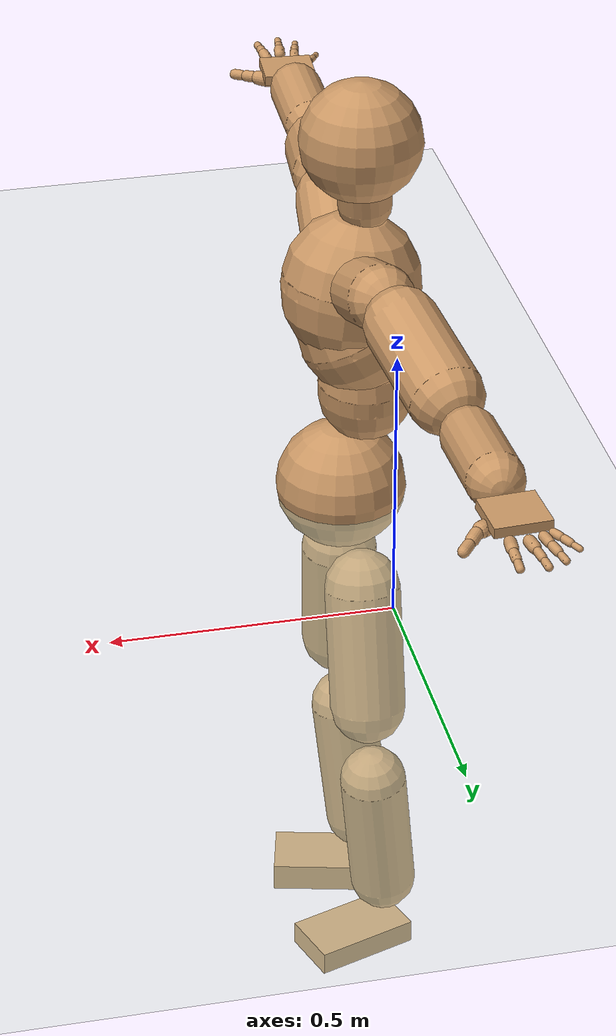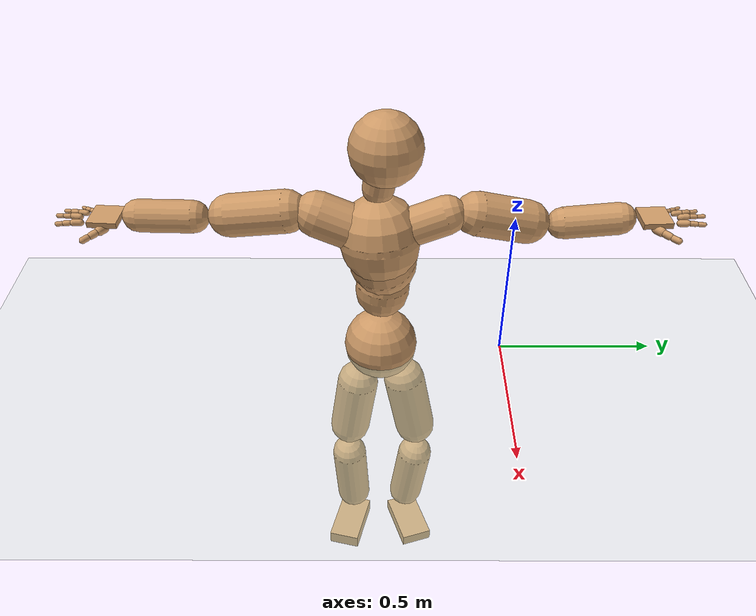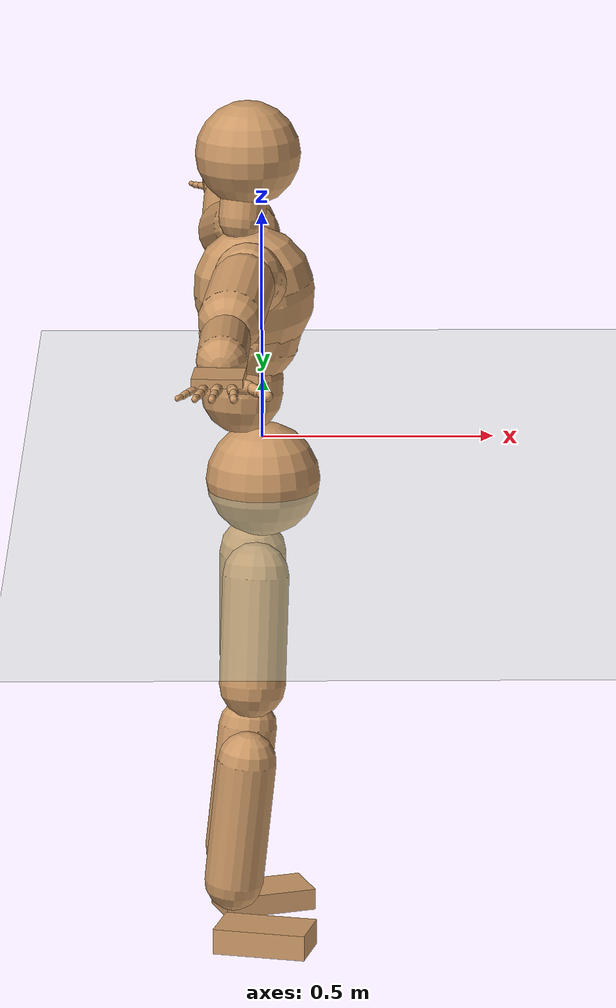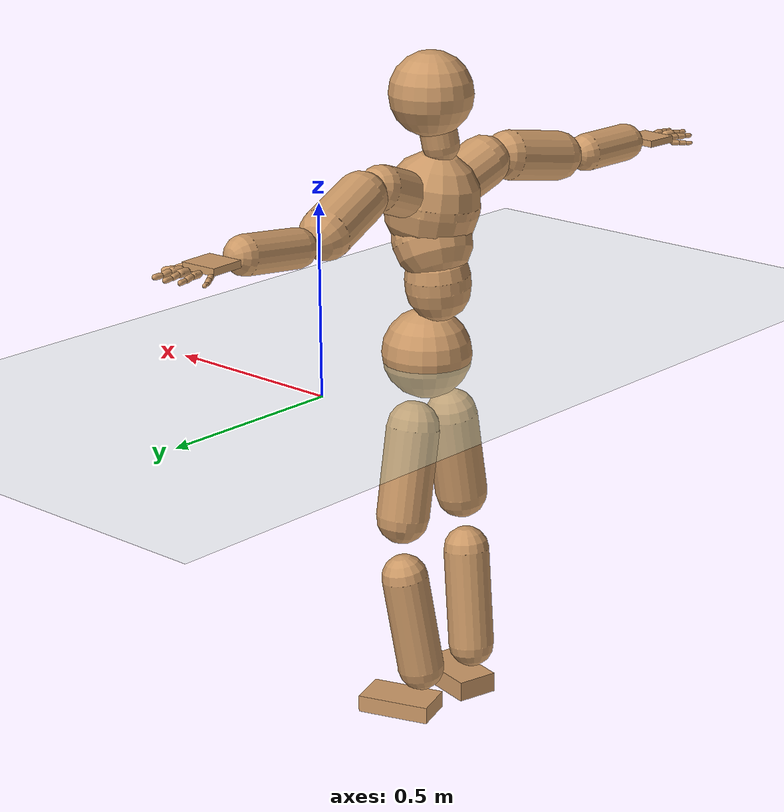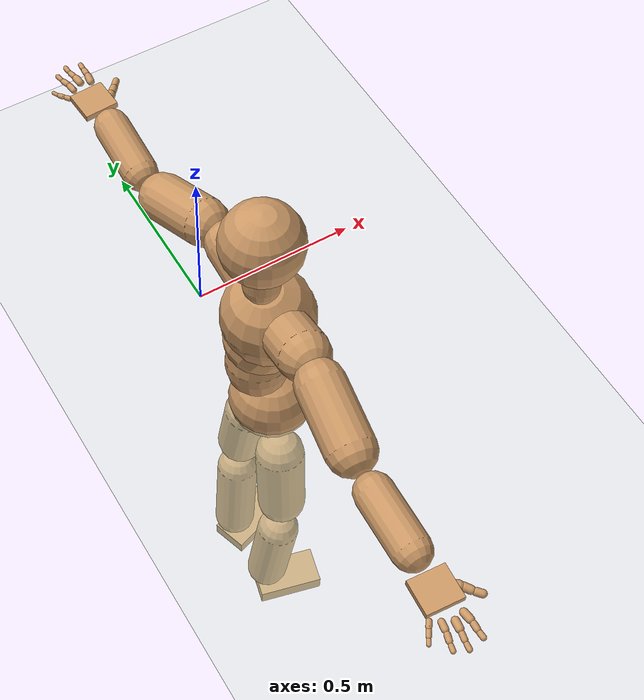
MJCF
<mujoco model="humanoid">
  <compiler coordinate="local" angle="radian"/>
  <default>
    <joint damping="0.0" armature="0.01" stiffness="0.0" limited="true"/>
    <geom conaffinity="1" condim="3" contype="7" margin="0.001" rgba="0.8 0.6 .4 1"/>
  </default>
  <asset>
    <texture type="skybox" builtin="gradient" rgb1=".4 .5 .6" rgb2="0 0 0" width="100" height="100"/>
    <texture builtin="flat" height="1278" mark="cross" markrgb="1 1 1" name="texgeom" random="0.01" rgb1="0.8 0.6 0.4" rgb2="0.8 0.6 0.4" type="cube" width="127"/>
    <texture builtin="checker" height="100" name="texplane" rgb1="0 0 0" rgb2="0.8 0.8 0.8" type="2d" width="100"/>
    <material name="MatPlane" reflectance="0.5" shininess="1" specular="1" texrepeat="60 60" texture="texplane"/>
    <material name="geom" texture="texgeom" texuniform="true"/>
  </asset>
  <worldbody>
    <light cutoff="100" diffuse="1 1 1" dir="-0 0 -1.3" directional="true" exponent="1" pos="0 0 1.3" specular=".1 .1 .1"/>
    <geom conaffinity="1" condim="3" name="floor" pos="0 0 0" rgba="0.8 0.9 0.8 1" size="100 100 .2" type="plane" material="MatPlane"/>
    <body name="Pelvis" pos="0.0018 -0.4015 0.0183">
      <freejoint name="Pelvis"/>
      <geom type="sphere" contype="1" conaffinity="1" density="500" size="0.1206" pos="0.0000 0.0000 0.0000" name="Pelvis"/>
      <body name="L_Hip" pos="-0.0224 0.0668 -0.1016">
        <joint name="L_Hip_x" type="hinge" pos="0 0 0" axis="1 0 0" stiffness="800" damping="80" armature="0.02" range="-180.0000 180.0000"/>
        <joint name="L_Hip_y" type="hinge" pos="0 0 0" axis="0 1 0" stiffness="800" damping="80" armature="0.02" range="-180.0000 180.0000"/>
        <joint name="L_Hip_z" type="hinge" pos="0 0 0" axis="0 0 1" stiffness="800" damping="80" armature="0.02" range="-180.0000 180.0000"/>
        <geom type="capsule" contype="1" conaffinity="1" density="500" fromto="-0.0008 0.0149 -0.0802 -0.0031 0.0597 -0.3207" size="0.0707" name="L_Hip"/>
        <body name="L_Knee" pos="-0.0039 0.0746 -0.4009">
          <joint name="L_Knee_x" type="hinge" pos="0 0 0" axis="1 0 0" stiffness="800" damping="80" armature="0.02" range="-180.0000 180.0000"/>
          <joint name="L_Knee_y" type="hinge" pos="0 0 0" axis="0 1 0" stiffness="800" damping="80" armature="0.02" range="-180.0000 180.0000"/>
          <joint name="L_Knee_z" type="hinge" pos="0 0 0" axis="0 0 1" stiffness="800" damping="80" armature="0.02" range="-180.0000 180.0000"/>
          <geom type="capsule" contype="1" conaffinity="1" density="500" fromto="-0.0099 -0.0102 -0.0878 -0.0395 -0.0408 -0.3514" size="0.0628" name="L_Knee"/>
          <body name="L_Ankle" pos="-0.0494 -0.051 -0.4392">
            <joint name="L_Ankle_x" type="hinge" pos="0 0 0" axis="1 0 0" stiffness="800" damping="80" armature="0.02" range="-180.0000 180.0000"/>
            <joint name="L_Ankle_y" type="hinge" pos="0 0 0" axis="0 1 0" stiffness="800" damping="80" armature="0.02" range="-180.0000 180.0000"/>
            <joint name="L_Ankle_z" type="hinge" pos="0 0 0" axis="0 0 1" stiffness="800" damping="80" armature="0.02" range="-180.0000 180.0000"/>
            <geom type="box" contype="1" conaffinity="1" density="500" pos="0.0717 0.0238 -0.0315" size="0.0998 0.0567 0.023" quat="0.9871 0.0000 0.0000 0.1598" name="L_Ankle"/>
            <body name="L_Toe" pos="0.1434 0.0477 -0.0629">
              <joint name="L_Toe_x" type="hinge" pos="0 0 0" axis="1 0 0" stiffness="500" damping="50" armature="0.02" range="-180.0000 180.0000"/>
              <joint name="L_Toe_y" type="hinge" pos="0 0 0" axis="0 1 0" stiffness="500" damping="50" armature="0.02" range="-180.0000 180.0000"/>
              <joint name="L_Toe_z" type="hinge" pos="0 0 0" axis="0 0 1" stiffness="500" damping="50" armature="0.02" range="-180.0000 180.0000"/>
              <geom type="box" contype="1" conaffinity="1" density="500" pos="0.0000 0.0000 0.0315" size="0.0011 0.0027 0.0012" quat="0.9865 0.0000 0.0000 0.1639" name="L_Toe"/>
            </body>
          </body>
        </body>
      </body>
      <body name="R_Hip" pos="-0.013 -0.0693 -0.1133">
        <joint name="R_Hip_x" type="hinge" pos="0 0 0" axis="1 0 0" stiffness="800" damping="80" armature="0.02" range="-180.0000 180.0000"/>
        <joint name="R_Hip_y" type="hinge" pos="0 0 0" axis="0 1 0" stiffness="800" damping="80" armature="0.02" range="-180.0000 180.0000"/>
        <joint name="R_Hip_z" type="hinge" pos="0 0 0" axis="0 0 1" stiffness="800" damping="80" armature="0.02" range="-180.0000 180.0000"/>
        <geom type="capsule" contype="1" conaffinity="1" density="500" fromto="-0.0028 -0.0111 -0.0767 -0.0112 -0.0444 -0.3066" size="0.0707" name="R_Hip"/>
        <body name="R_Knee" pos="-0.014 -0.0554 -0.3833">
          <joint name="R_Knee_x" type="hinge" pos="0 0 0" axis="1 0 0" stiffness="800" damping="80" armature="0.02" range="-180.0000 180.0000"/>
          <joint name="R_Knee_y" type="hinge" pos="0 0 0" axis="0 1 0" stiffness="800" damping="80" armature="0.02" range="-180.0000 180.0000"/>
          <joint name="R_Knee_z" type="hinge" pos="0 0 0" axis="0 0 1" stiffness="800" damping="80" armature="0.02" range="-180.0000 180.0000"/>
          <geom type="capsule" contype="1" conaffinity="1" density="500" fromto="-0.0096 0.0036 -0.0906 -0.0386 0.0146 -0.3623" size="0.0628" name="R_Knee"/>
          <body name="R_Ankle" pos="-0.0482 0.0182 -0.4529">
            <joint name="R_Ankle_x" type="hinge" pos="0 0 0" axis="1 0 0" stiffness="800" damping="80" armature="0.02" range="-180.0000 180.0000"/>
            <joint name="R_Ankle_y" type="hinge" pos="0 0 0" axis="0 1 0" stiffness="800" damping="80" armature="0.02" range="-180.0000 180.0000"/>
            <joint name="R_Ankle_z" type="hinge" pos="0 0 0" axis="0 0 1" stiffness="800" damping="80" armature="0.02" range="-180.0000 180.0000"/>
            <geom type="box" contype="1" conaffinity="1" density="500" pos="0.0752 -0.0188 -0.0307" size="0.0998 0.0567 0.0276" quat="0.9925 0.0000 0.0000 -0.1219" name="R_Ankle"/>
            <body name="R_Toe" pos="0.1504 -0.0375 -0.0614">
              <joint name="R_Toe_x" type="hinge" pos="0 0 0" axis="1 0 0" stiffness="500" damping="50" armature="0.02" range="-180.0000 180.0000"/>
              <joint name="R_Toe_y" type="hinge" pos="0 0 0" axis="0 1 0" stiffness="500" damping="50" armature="0.02" range="-180.0000 180.0000"/>
              <joint name="R_Toe_z" type="hinge" pos="0 0 0" axis="0 0 1" stiffness="500" damping="50" armature="0.02" range="-180.0000 180.0000"/>
              <geom type="box" contype="1" conaffinity="1" density="500" pos="0.0000 0.0000 0.0261" size="0.0011 0.0027 0.0012" quat="0.9935 0.0000 0.0000 -0.1142" name="R_Toe"/>
            </body>
          </body>
        </body>
      </body>
      <body name="Torso" pos="-0.0462 -0.0017 0.1204">
        <joint name="Torso_x" type="hinge" pos="0 0 0" axis="1 0 0" stiffness="1000" damping="100" armature="0.02" range="-180.0000 180.0000"/>
        <joint name="Torso_y" type="hinge" pos="0 0 0" axis="0 1 0" stiffness="1000" damping="100" armature="0.02" range="-180.0000 180.0000"/>
        <joint name="Torso_z" type="hinge" pos="0 0 0" axis="0 0 1" stiffness="1000" damping="100" armature="0.02" range="-180.0000 180.0000"/>
        <geom type="capsule" contype="1" conaffinity="1" density="500" fromto="0.0036 0.0088 0.0990 0.0024 0.0059 0.0660" size="0.0867" name="Torso"/>
        <body name="Spine" pos="0.0061 0.0147 0.1649">
          <joint name="Spine_x" type="hinge" pos="0 0 0" axis="1 0 0" stiffness="1000" damping="100" armature="0.02" range="-180.0000 180.0000"/>
          <joint name="Spine_y" type="hinge" pos="0 0 0" axis="0 1 0" stiffness="1000" damping="100" armature="0.02" range="-180.0000 180.0000"/>
          <joint name="Spine_z" type="hinge" pos="0 0 0" axis="0 0 1" stiffness="1000" damping="100" armature="0.02" range="-180.0000 180.0000"/>
          <geom type="capsule" contype="1" conaffinity="1" density="500" fromto="0.0188 -0.0068 0.0381 0.0125 -0.0046 0.0254" size="0.1063" name="Spine"/>
          <body name="Chest" pos="0.0313 -0.0114 0.0635">
            <joint name="Chest_x" type="hinge" pos="0 0 0" axis="1 0 0" stiffness="1000" damping="100" armature="0.02" range="-180.0000 180.0000"/>
            <joint name="Chest_y" type="hinge" pos="0 0 0" axis="0 1 0" stiffness="1000" damping="100" armature="0.02" range="-180.0000 180.0000"/>
            <joint name="Chest_z" type="hinge" pos="0 0 0" axis="0 0 1" stiffness="1000" damping="100" armature="0.02" range="-180.0000 180.0000"/>
            <geom type="capsule" contype="1" conaffinity="1" density="500" fromto="-0.0096 -0.0045 0.0697 -0.0064 -0.0030 0.0465" size="0.1262" name="Chest"/>
            <body name="Neck" pos="-0.0361 -0.0142 0.1813">
              <joint name="Neck_x" type="hinge" pos="0 0 0" axis="1 0 0" stiffness="500" damping="50" armature="0.02" range="-180.0000 180.0000"/>
              <joint name="Neck_y" type="hinge" pos="0 0 0" axis="0 1 0" stiffness="500" damping="50" armature="0.02" range="-180.0000 180.0000"/>
              <joint name="Neck_z" type="hinge" pos="0 0 0" axis="0 0 1" stiffness="500" damping="50" armature="0.02" range="-180.0000 180.0000"/>
              <geom type="capsule" contype="1" conaffinity="1" density="500" fromto="0.0033 0.0055 0.0335 0.0132 0.0221 0.1339" size="0.0489" name="Neck"/>
              <body name="Head" pos="0.0164 0.0276 0.1673">
                <joint name="Head_x" type="hinge" pos="0 0 0" axis="1 0 0" stiffness="500" damping="50" armature="0.02" range="-180.0000 180.0000"/>
                <joint name="Head_y" type="hinge" pos="0 0 0" axis="0 1 0" stiffness="500" damping="50" armature="0.02" range="-180.0000 180.0000"/>
                <joint name="Head_z" type="hinge" pos="0 0 0" axis="0 0 1" stiffness="500" damping="50" armature="0.02" range="-180.0000 180.0000"/>
                <geom type="sphere" contype="1" conaffinity="1" density="500" size="0.1102" pos="0.0000 0.0000 0.0000" name="Head"/>
              </body>
            </body>
            <body name="L_Thorax" pos="-0.0047 0.0512 0.0834">
              <joint name="L_Thorax_x" type="hinge" pos="0 0 0" axis="1 0 0" stiffness="500" damping="50" armature="0.02" range="-180.0000 180.0000"/>
              <joint name="L_Thorax_y" type="hinge" pos="0 0 0" axis="0 1 0" stiffness="500" damping="50" armature="0.02" range="-180.0000 180.0000"/>
              <joint name="L_Thorax_z" type="hinge" pos="0 0 0" axis="0 0 1" stiffness="500" damping="50" armature="0.02" range="-180.0000 180.0000"/>
              <geom type="capsule" contype="1" conaffinity="1" density="500" fromto="-0.0024 0.0363 0.0131 -0.0097 0.1450 0.0524" size="0.0605" name="L_Thorax"/>
              <body name="L_Shoulder" pos="-0.0121 0.1813 0.0655">
                <joint name="L_Shoulder_x" type="hinge" pos="0 0 0" axis="1 0 0" stiffness="500" damping="50" armature="0.02" range="-180.0000 180.0000"/>
                <joint name="L_Shoulder_y" type="hinge" pos="0 0 0" axis="0 1 0" stiffness="500" damping="50" armature="0.02" range="-180.0000 180.0000"/>
                <joint name="L_Shoulder_z" type="hinge" pos="0 0 0" axis="0 0 1" stiffness="500" damping="50" armature="0.02" range="-180.0000 180.0000"/>
                <geom type="capsule" contype="1" conaffinity="1" density="500" fromto="-0.0119 0.0546 -0.0172 -0.0476 0.2184 -0.0689" size="0.0675" name="L_Shoulder"/>
                <body name="L_Elbow" pos="-0.0595 0.273 -0.0862">
                  <joint name="L_Elbow_x" type="hinge" pos="0 0 0" axis="1 0 0" stiffness="500" damping="50" armature="0.02" range="-720.0000 720.0000"/>
                  <joint name="L_Elbow_y" type="hinge" pos="0 0 0" axis="0 1 0" stiffness="500" damping="50" armature="0.02" range="-720.0000 720.0000"/>
                  <joint name="L_Elbow_z" type="hinge" pos="0 0 0" axis="0 0 1" stiffness="500" damping="50" armature="0.02" range="-720.0000 720.0000"/>
                  <geom type="capsule" contype="1" conaffinity="1" density="500" fromto="0.0010 0.0574 0.0062 0.0040 0.2297 0.0249" size="0.0499" name="L_Elbow"/>
                  <body name="L_Wrist" pos="0.005 0.2871 0.0311">
                    <joint name="L_Wrist_x" type="hinge" pos="0 0 0" axis="1 0 0" stiffness="300" damping="30" armature="0.02" range="-180.0000 180.0000"/>
                    <joint name="L_Wrist_y" type="hinge" pos="0 0 0" axis="0 1 0" stiffness="300" damping="30" armature="0.02" range="-180.0000 180.0000"/>
                    <joint name="L_Wrist_z" type="hinge" pos="0 0 0" axis="0 0 1" stiffness="300" damping="30" armature="0.02" range="-180.0000 180.0000"/>
                    <geom type="box" contype="1" conaffinity="1" density="500" pos="-0.0030 0.0493 -0.0058" size="0.0462 0.0492 0.0091" quat="0.7280 0.0000 0.0000 -0.6855" name="L_Wrist"/>
                    <body name="L_Index1" pos="0.0234 0.1158 -0.0081">
                      <joint name="L_Index1_x" type="hinge" pos="0 0 0" axis="1 0 0" stiffness="100" damping="10" armature="0.02" range="-180.0000 180.0000"/>
                      <joint name="L_Index1_y" type="hinge" pos="0 0 0" axis="0 1 0" stiffness="100" damping="10" armature="0.02" range="-180.0000 180.0000"/>
                      <joint name="L_Index1_z" type="hinge" pos="0 0 0" axis="0 0 1" stiffness="100" damping="10" armature="0.02" range="-180.0000 180.0000"/>
                      <geom type="capsule" contype="1" conaffinity="1" density="500" fromto="0.0008 0.0070 0.0004 0.0031 0.0279 0.0016" size="0.0105" name="L_Index1"/>
                      <body name="L_Index2" pos="0.0039 0.0348 0.002">
                        <joint name="L_Index2_x" type="hinge" pos="0 0 0" axis="1 0 0" stiffness="100" damping="10" armature="0.02" range="-180.0000 180.0000"/>
                        <joint name="L_Index2_y" type="hinge" pos="0 0 0" axis="0 1 0" stiffness="100" damping="10" armature="0.02" range="-180.0000 180.0000"/>
                        <joint name="L_Index2_z" type="hinge" pos="0 0 0" axis="0 0 1" stiffness="100" damping="10" armature="0.02" range="-180.0000 180.0000"/>
                        <geom type="capsule" contype="1" conaffinity="1" density="500" fromto="-0.0000 0.0049 -0.0006 -0.0002 0.0196 -0.0024" size="0.0085" name="L_Index2"/>
                        <body name="L_Index3" pos="-0.0002 0.0245 -0.003">
                          <joint name="L_Index3_x" type="hinge" pos="0 0 0" axis="1 0 0" stiffness="100" damping="10" armature="0.02" range="-180.0000 180.0000"/>
                          <joint name="L_Index3_y" type="hinge" pos="0 0 0" axis="0 1 0" stiffness="100" damping="10" armature="0.02" range="-180.0000 180.0000"/>
                          <joint name="L_Index3_z" type="hinge" pos="0 0 0" axis="0 0 1" stiffness="100" damping="10" armature="0.02" range="-180.0000 180.0000"/>
                          <geom type="capsule" contype="1" conaffinity="1" density="500" fromto="0.0004 0.0053 -0.0002 0.0014 0.0212 -0.0008" size="0.0072" name="L_Index3"/>
                        </body>
                      </body>
                    </body>
                    <body name="L_Middle1" pos="-0.0035 0.1243 -0.0049">
                      <joint name="L_Middle1_x" type="hinge" pos="0 0 0" axis="1 0 0" stiffness="100" damping="10" armature="0.02" range="-180.0000 180.0000"/>
                      <joint name="L_Middle1_y" type="hinge" pos="0 0 0" axis="0 1 0" stiffness="100" damping="10" armature="0.02" range="-180.0000 180.0000"/>
                      <joint name="L_Middle1_z" type="hinge" pos="0 0 0" axis="0 0 1" stiffness="100" damping="10" armature="0.02" range="-180.0000 180.0000"/>
                      <geom type="capsule" contype="1" conaffinity="1" density="500" fromto="-0.0009 0.0066 0.0001 -0.0037 0.0266 0.0006" size="0.0105" name="L_Middle1"/>
                      <body name="L_Middle2" pos="-0.0046 0.0332 0.0007">
                        <joint name="L_Middle2_x" type="hinge" pos="0 0 0" axis="1 0 0" stiffness="100" damping="10" armature="0.02" range="-180.0000 180.0000"/>
                        <joint name="L_Middle2_y" type="hinge" pos="0 0 0" axis="0 1 0" stiffness="100" damping="10" armature="0.02" range="-180.0000 180.0000"/>
                        <joint name="L_Middle2_z" type="hinge" pos="0 0 0" axis="0 0 1" stiffness="100" damping="10" armature="0.02" range="-180.0000 180.0000"/>
                        <geom type="capsule" contype="1" conaffinity="1" density="500" fromto="-0.0009 0.0051 -0.0005 -0.0036 0.0203 -0.0022" size="0.0077" name="L_Middle2"/>
                        <body name="L_Middle3" pos="-0.0045 0.0253 -0.0027">
                          <joint name="L_Middle3_x" type="hinge" pos="0 0 0" axis="1 0 0" stiffness="100" damping="10" armature="0.02" range="-180.0000 180.0000"/>
                          <joint name="L_Middle3_y" type="hinge" pos="0 0 0" axis="0 1 0" stiffness="100" damping="10" armature="0.02" range="-180.0000 180.0000"/>
                          <joint name="L_Middle3_z" type="hinge" pos="0 0 0" axis="0 0 1" stiffness="100" damping="10" armature="0.02" range="-180.0000 180.0000"/>
                          <geom type="capsule" contype="1" conaffinity="1" density="500" fromto="-0.0005 0.0055 -0.0001 -0.0020 0.0219 -0.0006" size="0.0068" name="L_Middle3"/>
                        </body>
                      </body>
                    </body>
                    <body name="L_Pinky1" pos="-0.0496 0.0961 -0.0148">
                      <joint name="L_Pinky1_x" type="hinge" pos="0 0 0" axis="1 0 0" stiffness="100" damping="10" armature="0.02" range="-180.0000 180.0000"/>
                      <joint name="L_Pinky1_y" type="hinge" pos="0 0 0" axis="0 1 0" stiffness="100" damping="10" armature="0.02" range="-180.0000 180.0000"/>
                      <joint name="L_Pinky1_z" type="hinge" pos="0 0 0" axis="0 0 1" stiffness="100" damping="10" armature="0.02" range="-180.0000 180.0000"/>
                      <geom type="capsule" contype="1" conaffinity="1" density="500" fromto="-0.0025 0.0036 -0.0004 -0.0101 0.0143 -0.0016" size="0.0075" name="L_Pinky1"/>
                      <body name="L_Pinky2" pos="-0.0126 0.0179 -0.002">
                        <joint name="L_Pinky2_x" type="hinge" pos="0 0 0" axis="1 0 0" stiffness="100" damping="10" armature="0.02" range="-180.0000 180.0000"/>
                        <joint name="L_Pinky2_y" type="hinge" pos="0 0 0" axis="0 1 0" stiffness="100" damping="10" armature="0.02" range="-180.0000 180.0000"/>
                        <joint name="L_Pinky2_z" type="hinge" pos="0 0 0" axis="0 0 1" stiffness="100" damping="10" armature="0.02" range="-180.0000 180.0000"/>
                        <geom type="capsule" contype="1" conaffinity="1" density="500" fromto="-0.0023 0.0035 -0.0005 -0.0093 0.0140 -0.0020" size="0.0071" name="L_Pinky2"/>
                        <body name="L_Pinky3" pos="-0.0116 0.0175 -0.0025">
                          <joint name="L_Pinky3_x" type="hinge" pos="0 0 0" axis="1 0 0" stiffness="100" damping="10" armature="0.02" range="-180.0000 180.0000"/>
                          <joint name="L_Pinky3_y" type="hinge" pos="0 0 0" axis="0 1 0" stiffness="100" damping="10" armature="0.02" range="-180.0000 180.0000"/>
                          <joint name="L_Pinky3_z" type="hinge" pos="0 0 0" axis="0 0 1" stiffness="100" damping="10" armature="0.02" range="-180.0000 180.0000"/>
                          <geom type="capsule" contype="1" conaffinity="1" density="500" fromto="-0.0019 0.0039 -0.0001 -0.0077 0.0156 -0.0004" size="0.0054" name="L_Pinky3"/>
                        </body>
                      </body>
                    </body>
                    <body name="L_Ring1" pos="-0.0305 0.1111 -0.0083">
                      <joint name="L_Ring1_x" type="hinge" pos="0 0 0" axis="1 0 0" stiffness="100" damping="10" armature="0.02" range="-180.0000 180.0000"/>
                      <joint name="L_Ring1_y" type="hinge" pos="0 0 0" axis="0 1 0" stiffness="100" damping="10" armature="0.02" range="-180.0000 180.0000"/>
                      <joint name="L_Ring1_z" type="hinge" pos="0 0 0" axis="0 0 1" stiffness="100" damping="10" armature="0.02" range="-180.0000 180.0000"/>
                      <geom type="capsule" contype="1" conaffinity="1" density="500" fromto="-0.0010 0.0062 0.0002 -0.0042 0.0250 0.0007" size="0.009" name="L_Ring1"/>
                      <body name="L_Ring2" pos="-0.0052 0.0312 0.0009">
                        <joint name="L_Ring2_x" type="hinge" pos="0 0 0" axis="1 0 0" stiffness="100" damping="10" armature="0.02" range="-180.0000 180.0000"/>
                        <joint name="L_Ring2_y" type="hinge" pos="0 0 0" axis="0 1 0" stiffness="100" damping="10" armature="0.02" range="-180.0000 180.0000"/>
                        <joint name="L_Ring2_z" type="hinge" pos="0 0 0" axis="0 0 1" stiffness="100" damping="10" armature="0.02" range="-180.0000 180.0000"/>
                        <geom type="capsule" contype="1" conaffinity="1" density="500" fromto="-0.0014 0.0050 -0.0005 -0.0057 0.0201 -0.0020" size="0.0082" name="L_Ring2"/>
                        <body name="L_Ring3" pos="-0.0071 0.0251 -0.0026">
                          <joint name="L_Ring3_x" type="hinge" pos="0 0 0" axis="1 0 0" stiffness="100" damping="10" armature="0.02" range="-180.0000 180.0000"/>
                          <joint name="L_Ring3_y" type="hinge" pos="0 0 0" axis="0 1 0" stiffness="100" damping="10" armature="0.02" range="-180.0000 180.0000"/>
                          <joint name="L_Ring3_z" type="hinge" pos="0 0 0" axis="0 0 1" stiffness="100" damping="10" armature="0.02" range="-180.0000 180.0000"/>
                          <geom type="capsule" contype="1" conaffinity="1" density="500" fromto="-0.0010 0.0054 -0.0001 -0.0041 0.0217 -0.0004" size="0.0064" name="L_Ring3"/>
                        </body>
                      </body>
                    </body>
                    <body name="L_Thumb1" pos="0.0305 0.0462 -0.0216">
                      <joint name="L_Thumb1_x" type="hinge" pos="0 0 0" axis="1 0 0" stiffness="100" damping="10" armature="0.02" range="-180.0000 180.0000"/>
                      <joint name="L_Thumb1_y" type="hinge" pos="0 0 0" axis="0 1 0" stiffness="100" damping="10" armature="0.02" range="-180.0000 180.0000"/>
                      <joint name="L_Thumb1_z" type="hinge" pos="0 0 0" axis="0 0 1" stiffness="100" damping="10" armature="0.02" range="-180.0000 180.0000"/>
                      <geom type="capsule" contype="1" conaffinity="1" density="500" fromto="0.0058 0.0037 0.0005 0.0233 0.0147 0.0021" size="0.0143" name="L_Thumb1"/>
                      <body name="L_Thumb2" pos="0.0292 0.0184 0.0026">
                        <joint name="L_Thumb2_x" type="hinge" pos="0 0 0" axis="1 0 0" stiffness="100" damping="10" armature="0.02" range="-180.0000 180.0000"/>
                        <joint name="L_Thumb2_y" type="hinge" pos="0 0 0" axis="0 1 0" stiffness="100" damping="10" armature="0.02" range="-180.0000 180.0000"/>
                        <joint name="L_Thumb2_z" type="hinge" pos="0 0 0" axis="0 0 1" stiffness="100" damping="10" armature="0.02" range="-180.0000 180.0000"/>
                        <geom type="capsule" contype="1" conaffinity="1" density="500" fromto="0.0036 0.0044 -0.0010 0.0143 0.0176 -0.0041" size="0.0113" name="L_Thumb2"/>
                        <body name="L_Thumb3" pos="0.0178 0.022 -0.0051">
                          <joint name="L_Thumb3_x" type="hinge" pos="0 0 0" axis="1 0 0" stiffness="100" damping="10" armature="0.02" range="-180.0000 180.0000"/>
                          <joint name="L_Thumb3_y" type="hinge" pos="0 0 0" axis="0 1 0" stiffness="100" damping="10" armature="0.02" range="-180.0000 180.0000"/>
                          <joint name="L_Thumb3_z" type="hinge" pos="0 0 0" axis="0 0 1" stiffness="100" damping="10" armature="0.02" range="-180.0000 180.0000"/>
                          <geom type="capsule" contype="1" conaffinity="1" density="500" fromto="0.0040 0.0048 -0.0006 0.0159 0.0192 -0.0025" size="0.01" name="L_Thumb3"/>
                        </body>
                      </body>
                    </body>
                  </body>
                </body>
              </body>
            </body>
            <body name="R_Thorax" pos="-0.0072 -0.0597 0.0838">
              <joint name="R_Thorax_x" type="hinge" pos="0 0 0" axis="1 0 0" stiffness="500" damping="50" armature="0.02" range="-180.0000 180.0000"/>
              <joint name="R_Thorax_y" type="hinge" pos="0 0 0" axis="0 1 0" stiffness="500" damping="50" armature="0.02" range="-180.0000 180.0000"/>
              <joint name="R_Thorax_z" type="hinge" pos="0 0 0" axis="0 0 1" stiffness="500" damping="50" armature="0.02" range="-180.0000 180.0000"/>
              <geom type="capsule" contype="1" conaffinity="1" density="500" fromto="-0.0031 -0.0332 0.0128 -0.0122 -0.1327 0.0511" size="0.0708" name="R_Thorax"/>
              <body name="R_Shoulder" pos="-0.0153 -0.1659 0.0639">
                <joint name="R_Shoulder_x" type="hinge" pos="0 0 0" axis="1 0 0" stiffness="500" damping="50" armature="0.02" range="-180.0000 180.0000"/>
                <joint name="R_Shoulder_y" type="hinge" pos="0 0 0" axis="0 1 0" stiffness="500" damping="50" armature="0.02" range="-180.0000 180.0000"/>
                <joint name="R_Shoulder_z" type="hinge" pos="0 0 0" axis="0 0 1" stiffness="500" damping="50" armature="0.02" range="-180.0000 180.0000"/>
                <geom type="capsule" contype="1" conaffinity="1" density="500" fromto="-0.0077 -0.0591 -0.0098 -0.0308 -0.2364 -0.0394" size="0.0667" name="R_Shoulder"/>
                <body name="R_Elbow" pos="-0.0385 -0.2955 -0.0492">
                  <joint name="R_Elbow_x" type="hinge" pos="0 0 0" axis="1 0 0" stiffness="500" damping="50" armature="0.02" range="-720.0000 720.0000"/>
                  <joint name="R_Elbow_y" type="hinge" pos="0 0 0" axis="0 1 0" stiffness="500" damping="50" armature="0.02" range="-720.0000 720.0000"/>
                  <joint name="R_Elbow_z" type="hinge" pos="0 0 0" axis="0 0 1" stiffness="500" damping="50" armature="0.02" range="-720.0000 720.0000"/>
                  <geom type="capsule" contype="1" conaffinity="1" density="500" fromto="-0.0019 -0.0558 -0.0001 -0.0075 -0.2230 -0.0003" size="0.0511" name="R_Elbow"/>
                  <body name="R_Wrist" pos="-0.0094 -0.2788 -0.0004">
                    <joint name="R_Wrist_x" type="hinge" pos="0 0 0" axis="1 0 0" stiffness="300" damping="30" armature="0.02" range="-180.0000 180.0000"/>
                    <joint name="R_Wrist_y" type="hinge" pos="0 0 0" axis="0 1 0" stiffness="300" damping="30" armature="0.02" range="-180.0000 180.0000"/>
                    <joint name="R_Wrist_z" type="hinge" pos="0 0 0" axis="0 0 1" stiffness="300" damping="30" armature="0.02" range="-180.0000 180.0000"/>
                    <geom type="box" contype="1" conaffinity="1" density="500" pos="-0.0034 -0.0490 -0.0078" size="0.0462 0.0506 0.0093" quat="0.7311 0.0000 0.0000 0.6823" name="R_Wrist"/>
                    <body name="R_Index1" pos="0.0225 -0.1151 -0.0122">
                      <joint name="R_Index1_x" type="hinge" pos="0 0 0" axis="1 0 0" stiffness="100" damping="10" armature="0.02" range="-180.0000 180.0000"/>
                      <joint name="R_Index1_y" type="hinge" pos="0 0 0" axis="0 1 0" stiffness="100" damping="10" armature="0.02" range="-180.0000 180.0000"/>
                      <joint name="R_Index1_z" type="hinge" pos="0 0 0" axis="0 0 1" stiffness="100" damping="10" armature="0.02" range="-180.0000 180.0000"/>
                      <geom type="capsule" contype="1" conaffinity="1" density="500" fromto="0.0008 -0.0070 0.0004 0.0031 -0.0279 0.0016" size="0.0105" name="R_Index1"/>
                      <body name="R_Index2" pos="0.0039 -0.0348 0.002">
                        <joint name="R_Index2_x" type="hinge" pos="0 0 0" axis="1 0 0" stiffness="100" damping="10" armature="0.02" range="-180.0000 180.0000"/>
                        <joint name="R_Index2_y" type="hinge" pos="0 0 0" axis="0 1 0" stiffness="100" damping="10" armature="0.02" range="-180.0000 180.0000"/>
                        <joint name="R_Index2_z" type="hinge" pos="0 0 0" axis="0 0 1" stiffness="100" damping="10" armature="0.02" range="-180.0000 180.0000"/>
                        <geom type="capsule" contype="1" conaffinity="1" density="500" fromto="-0.0000 -0.0049 -0.0006 -0.0002 -0.0196 -0.0024" size="0.0085" name="R_Index2"/>
                        <body name="R_Index3" pos="-0.0002 -0.0245 -0.003">
                          <joint name="R_Index3_x" type="hinge" pos="0 0 0" axis="1 0 0" stiffness="100" damping="10" armature="0.02" range="-180.0000 180.0000"/>
                          <joint name="R_Index3_y" type="hinge" pos="0 0 0" axis="0 1 0" stiffness="100" damping="10" armature="0.02" range="-180.0000 180.0000"/>
                          <joint name="R_Index3_z" type="hinge" pos="0 0 0" axis="0 0 1" stiffness="100" damping="10" armature="0.02" range="-180.0000 180.0000"/>
                          <geom type="capsule" contype="1" conaffinity="1" density="500" fromto="0.0004 -0.0045 -0.0002 0.0014 -0.0180 -0.0008" size="0.0075" name="R_Index3"/>
                        </body>
                      </body>
                    </body>
                    <body name="R_Middle1" pos="-0.0043 -0.1235 -0.009">
                      <joint name="R_Middle1_x" type="hinge" pos="0 0 0" axis="1 0 0" stiffness="100" damping="10" armature="0.02" range="-180.0000 180.0000"/>
                      <joint name="R_Middle1_y" type="hinge" pos="0 0 0" axis="0 1 0" stiffness="100" damping="10" armature="0.02" range="-180.0000 180.0000"/>
                      <joint name="R_Middle1_z" type="hinge" pos="0 0 0" axis="0 0 1" stiffness="100" damping="10" armature="0.02" range="-180.0000 180.0000"/>
                      <geom type="capsule" contype="1" conaffinity="1" density="500" fromto="-0.0009 -0.0066 0.0001 -0.0037 -0.0266 0.0006" size="0.0105" name="R_Middle1"/>
                      <body name="R_Middle2" pos="-0.0046 -0.0332 0.0007">
                        <joint name="R_Middle2_x" type="hinge" pos="0 0 0" axis="1 0 0" stiffness="100" damping="10" armature="0.02" range="-180.0000 180.0000"/>
                        <joint name="R_Middle2_y" type="hinge" pos="0 0 0" axis="0 1 0" stiffness="100" damping="10" armature="0.02" range="-180.0000 180.0000"/>
                        <joint name="R_Middle2_z" type="hinge" pos="0 0 0" axis="0 0 1" stiffness="100" damping="10" armature="0.02" range="-180.0000 180.0000"/>
                        <geom type="capsule" contype="1" conaffinity="1" density="500" fromto="-0.0009 -0.0051 -0.0005 -0.0036 -0.0203 -0.0022" size="0.0077" name="R_Middle2"/>
                        <body name="R_Middle3" pos="-0.0045 -0.0253 -0.0027">
                          <joint name="R_Middle3_x" type="hinge" pos="0 0 0" axis="1 0 0" stiffness="100" damping="10" armature="0.02" range="-180.0000 180.0000"/>
                          <joint name="R_Middle3_y" type="hinge" pos="0 0 0" axis="0 1 0" stiffness="100" damping="10" armature="0.02" range="-180.0000 180.0000"/>
                          <joint name="R_Middle3_z" type="hinge" pos="0 0 0" axis="0 0 1" stiffness="100" damping="10" armature="0.02" range="-180.0000 180.0000"/>
                          <geom type="capsule" contype="1" conaffinity="1" density="500" fromto="-0.0005 -0.0047 -0.0001 -0.0020 -0.0187 -0.0006" size="0.007" name="R_Middle3"/>
                        </body>
                      </body>
                    </body>
                    <body name="R_Pinky1" pos="-0.0504 -0.0954 -0.0189">
                      <joint name="R_Pinky1_x" type="hinge" pos="0 0 0" axis="1 0 0" stiffness="100" damping="10" armature="0.02" range="-180.0000 180.0000"/>
                      <joint name="R_Pinky1_y" type="hinge" pos="0 0 0" axis="0 1 0" stiffness="100" damping="10" armature="0.02" range="-180.0000 180.0000"/>
                      <joint name="R_Pinky1_z" type="hinge" pos="0 0 0" axis="0 0 1" stiffness="100" damping="10" armature="0.02" range="-180.0000 180.0000"/>
                      <geom type="capsule" contype="1" conaffinity="1" density="500" fromto="-0.0025 -0.0036 -0.0004 -0.0101 -0.0143 -0.0016" size="0.0075" name="R_Pinky1"/>
                      <body name="R_Pinky2" pos="-0.0126 -0.0179 -0.002">
                        <joint name="R_Pinky2_x" type="hinge" pos="0 0 0" axis="1 0 0" stiffness="100" damping="10" armature="0.02" range="-180.0000 180.0000"/>
                        <joint name="R_Pinky2_y" type="hinge" pos="0 0 0" axis="0 1 0" stiffness="100" damping="10" armature="0.02" range="-180.0000 180.0000"/>
                        <joint name="R_Pinky2_z" type="hinge" pos="0 0 0" axis="0 0 1" stiffness="100" damping="10" armature="0.02" range="-180.0000 180.0000"/>
                        <geom type="capsule" contype="1" conaffinity="1" density="500" fromto="-0.0023 -0.0035 -0.0005 -0.0093 -0.0140 -0.0020" size="0.0071" name="R_Pinky2"/>
                        <body name="R_Pinky3" pos="-0.0116 -0.0175 -0.0025">
                          <joint name="R_Pinky3_x" type="hinge" pos="0 0 0" axis="1 0 0" stiffness="100" damping="10" armature="0.02" range="-180.0000 180.0000"/>
                          <joint name="R_Pinky3_y" type="hinge" pos="0 0 0" axis="0 1 0" stiffness="100" damping="10" armature="0.02" range="-180.0000 180.0000"/>
                          <joint name="R_Pinky3_z" type="hinge" pos="0 0 0" axis="0 0 1" stiffness="100" damping="10" armature="0.02" range="-180.0000 180.0000"/>
                          <geom type="capsule" contype="1" conaffinity="1" density="500" fromto="-0.0019 -0.0031 -0.0001 -0.0077 -0.0124 -0.0004" size="0.0056" name="R_Pinky3"/>
                        </body>
                      </body>
                    </body>
                    <body name="R_Ring1" pos="-0.0314 -0.1103 -0.0124">
                      <joint name="R_Ring1_x" type="hinge" pos="0 0 0" axis="1 0 0" stiffness="100" damping="10" armature="0.02" range="-180.0000 180.0000"/>
                      <joint name="R_Ring1_y" type="hinge" pos="0 0 0" axis="0 1 0" stiffness="100" damping="10" armature="0.02" range="-180.0000 180.0000"/>
                      <joint name="R_Ring1_z" type="hinge" pos="0 0 0" axis="0 0 1" stiffness="100" damping="10" armature="0.02" range="-180.0000 180.0000"/>
                      <geom type="capsule" contype="1" conaffinity="1" density="500" fromto="-0.0010 -0.0062 0.0002 -0.0042 -0.0250 0.0007" size="0.009" name="R_Ring1"/>
                      <body name="R_Ring2" pos="-0.0052 -0.0312 0.0009">
                        <joint name="R_Ring2_x" type="hinge" pos="0 0 0" axis="1 0 0" stiffness="100" damping="10" armature="0.02" range="-180.0000 180.0000"/>
                        <joint name="R_Ring2_y" type="hinge" pos="0 0 0" axis="0 1 0" stiffness="100" damping="10" armature="0.02" range="-180.0000 180.0000"/>
                        <joint name="R_Ring2_z" type="hinge" pos="0 0 0" axis="0 0 1" stiffness="100" damping="10" armature="0.02" range="-180.0000 180.0000"/>
                        <geom type="capsule" contype="1" conaffinity="1" density="500" fromto="-0.0014 -0.0050 -0.0005 -0.0057 -0.0201 -0.0020" size="0.0082" name="R_Ring2"/>
                        <body name="R_Ring3" pos="-0.0071 -0.0251 -0.0026">
                          <joint name="R_Ring3_x" type="hinge" pos="0 0 0" axis="1 0 0" stiffness="100" damping="10" armature="0.02" range="-180.0000 180.0000"/>
                          <joint name="R_Ring3_y" type="hinge" pos="0 0 0" axis="0 1 0" stiffness="100" damping="10" armature="0.02" range="-180.0000 180.0000"/>
                          <joint name="R_Ring3_z" type="hinge" pos="0 0 0" axis="0 0 1" stiffness="100" damping="10" armature="0.02" range="-180.0000 180.0000"/>
                          <geom type="capsule" contype="1" conaffinity="1" density="500" fromto="-0.0010 -0.0046 -0.0001 -0.0041 -0.0185 -0.0004" size="0.0066" name="R_Ring3"/>
                        </body>
                      </body>
                    </body>
                    <body name="R_Thumb1" pos="0.0297 -0.0455 -0.0257">
                      <joint name="R_Thumb1_x" type="hinge" pos="0 0 0" axis="1 0 0" stiffness="100" damping="10" armature="0.02" range="-180.0000 180.0000"/>
                      <joint name="R_Thumb1_y" type="hinge" pos="0 0 0" axis="0 1 0" stiffness="100" damping="10" armature="0.02" range="-180.0000 180.0000"/>
                      <joint name="R_Thumb1_z" type="hinge" pos="0 0 0" axis="0 0 1" stiffness="100" damping="10" armature="0.02" range="-180.0000 180.0000"/>
                      <geom type="capsule" contype="1" conaffinity="1" density="500" fromto="0.0058 -0.0037 0.0005 0.0233 -0.0147 0.0021" size="0.0143" name="R_Thumb1"/>
                      <body name="R_Thumb2" pos="0.0292 -0.0184 0.0026">
                        <joint name="R_Thumb2_x" type="hinge" pos="0 0 0" axis="1 0 0" stiffness="100" damping="10" armature="0.02" range="-180.0000 180.0000"/>
                        <joint name="R_Thumb2_y" type="hinge" pos="0 0 0" axis="0 1 0" stiffness="100" damping="10" armature="0.02" range="-180.0000 180.0000"/>
                        <joint name="R_Thumb2_z" type="hinge" pos="0 0 0" axis="0 0 1" stiffness="100" damping="10" armature="0.02" range="-180.0000 180.0000"/>
                        <geom type="capsule" contype="1" conaffinity="1" density="500" fromto="0.0036 -0.0044 -0.0010 0.0143 -0.0176 -0.0041" size="0.0113" name="R_Thumb2"/>
                        <body name="R_Thumb3" pos="0.0178 -0.022 -0.0051">
                          <joint name="R_Thumb3_x" type="hinge" pos="0 0 0" axis="1 0 0" stiffness="100" damping="10" armature="0.02" range="-180.0000 180.0000"/>
                          <joint name="R_Thumb3_y" type="hinge" pos="0 0 0" axis="0 1 0" stiffness="100" damping="10" armature="0.02" range="-180.0000 180.0000"/>
                          <joint name="R_Thumb3_z" type="hinge" pos="0 0 0" axis="0 0 1" stiffness="100" damping="10" armature="0.02" range="-180.0000 180.0000"/>
                          <geom type="capsule" contype="1" conaffinity="1" density="500" fromto="0.0040 -0.0040 -0.0006 0.0159 -0.0160 -0.0025" size="0.0103" name="R_Thumb3"/>
                        </body>
                      </body>
                    </body>
                  </body>
                </body>
              </body>
            </body>
          </body>
        </body>
      </body>
    </body>
  </worldbody>
  <actuator>
    <motor name="L_Hip_x" joint="L_Hip_x" gear="500"/>
    <motor name="L_Hip_y" joint="L_Hip_y" gear="500"/>
    <motor name="L_Hip_z" joint="L_Hip_z" gear="500"/>
    <motor name="L_Knee_x" joint="L_Knee_x" gear="500"/>
    <motor name="L_Knee_y" joint="L_Knee_y" gear="500"/>
    <motor name="L_Knee_z" joint="L_Knee_z" gear="500"/>
    <motor name="L_Ankle_x" joint="L_Ankle_x" gear="500"/>
    <motor name="L_Ankle_y" joint="L_Ankle_y" gear="500"/>
    <motor name="L_Ankle_z" joint="L_Ankle_z" gear="500"/>
    <motor name="L_Toe_x" joint="L_Toe_x" gear="500"/>
    <motor name="L_Toe_y" joint="L_Toe_y" gear="500"/>
    <motor name="L_Toe_z" joint="L_Toe_z" gear="500"/>
    <motor name="R_Hip_x" joint="R_Hip_x" gear="500"/>
    <motor name="R_Hip_y" joint="R_Hip_y" gear="500"/>
    <motor name="R_Hip_z" joint="R_Hip_z" gear="500"/>
    <motor name="R_Knee_x" joint="R_Knee_x" gear="500"/>
    <motor name="R_Knee_y" joint="R_Knee_y" gear="500"/>
    <motor name="R_Knee_z" joint="R_Knee_z" gear="500"/>
    <motor name="R_Ankle_x" joint="R_Ankle_x" gear="500"/>
    <motor name="R_Ankle_y" joint="R_Ankle_y" gear="500"/>
    <motor name="R_Ankle_z" joint="R_Ankle_z" gear="500"/>
    <motor name="R_Toe_x" joint="R_Toe_x" gear="500"/>
    <motor name="R_Toe_y" joint="R_Toe_y" gear="500"/>
    <motor name="R_Toe_z" joint="R_Toe_z" gear="500"/>
    <motor name="Torso_x" joint="Torso_x" gear="500"/>
    <motor name="Torso_y" joint="Torso_y" gear="500"/>
    <motor name="Torso_z" joint="Torso_z" gear="500"/>
    <motor name="Spine_x" joint="Spine_x" gear="500"/>
    <motor name="Spine_y" joint="Spine_y" gear="500"/>
    <motor name="Spine_z" joint="Spine_z" gear="500"/>
    <motor name="Chest_x" joint="Chest_x" gear="500"/>
    <motor name="Chest_y" joint="Chest_y" gear="500"/>
    <motor name="Chest_z" joint="Chest_z" gear="500"/>
    <motor name="Neck_x" joint="Neck_x" gear="500"/>
    <motor name="Neck_y" joint="Neck_y" gear="500"/>
    <motor name="Neck_z" joint="Neck_z" gear="500"/>
    <motor name="Head_x" joint="Head_x" gear="500"/>
    <motor name="Head_y" joint="Head_y" gear="500"/>
    <motor name="Head_z" joint="Head_z" gear="500"/>
    <motor name="L_Thorax_x" joint="L_Thorax_x" gear="500"/>
    <motor name="L_Thorax_y" joint="L_Thorax_y" gear="500"/>
    <motor name="L_Thorax_z" joint="L_Thorax_z" gear="500"/>
    <motor name="L_Shoulder_x" joint="L_Shoulder_x" gear="500"/>
    <motor name="L_Shoulder_y" joint="L_Shoulder_y" gear="500"/>
    <motor name="L_Shoulder_z" joint="L_Shoulder_z" gear="500"/>
    <motor name="L_Elbow_x" joint="L_Elbow_x" gear="500"/>
    <motor name="L_Elbow_y" joint="L_Elbow_y" gear="500"/>
    <motor name="L_Elbow_z" joint="L_Elbow_z" gear="500"/>
    <motor name="L_Wrist_x" joint="L_Wrist_x" gear="500"/>
    <motor name="L_Wrist_y" joint="L_Wrist_y" gear="500"/>
    <motor name="L_Wrist_z" joint="L_Wrist_z" gear="500"/>
    <motor name="L_Index1_x" joint="L_Index1_x" gear="500"/>
    <motor name="L_Index1_y" joint="L_Index1_y" gear="500"/>
    <motor name="L_Index1_z" joint="L_Index1_z" gear="500"/>
    <motor name="L_Index2_x" joint="L_Index2_x" gear="500"/>
    <motor name="L_Index2_y" joint="L_Index2_y" gear="500"/>
    <motor name="L_Index2_z" joint="L_Index2_z" gear="500"/>
    <motor name="L_Index3_x" joint="L_Index3_x" gear="500"/>
    <motor name="L_Index3_y" joint="L_Index3_y" gear="500"/>
    <motor name="L_Index3_z" joint="L_Index3_z" gear="500"/>
    <motor name="L_Middle1_x" joint="L_Middle1_x" gear="500"/>
    <motor name="L_Middle1_y" joint="L_Middle1_y" gear="500"/>
    <motor name="L_Middle1_z" joint="L_Middle1_z" gear="500"/>
    <motor name="L_Middle2_x" joint="L_Middle2_x" gear="500"/>
    <motor name="L_Middle2_y" joint="L_Middle2_y" gear="500"/>
    <motor name="L_Middle2_z" joint="L_Middle2_z" gear="500"/>
    <motor name="L_Middle3_x" joint="L_Middle3_x" gear="500"/>
    <motor name="L_Middle3_y" joint="L_Middle3_y" gear="500"/>
    <motor name="L_Middle3_z" joint="L_Middle3_z" gear="500"/>
    <motor name="L_Pinky1_x" joint="L_Pinky1_x" gear="500"/>
    <motor name="L_Pinky1_y" joint="L_Pinky1_y" gear="500"/>
    <motor name="L_Pinky1_z" joint="L_Pinky1_z" gear="500"/>
    <motor name="L_Pinky2_x" joint="L_Pinky2_x" gear="500"/>
    <motor name="L_Pinky2_y" joint="L_Pinky2_y" gear="500"/>
    <motor name="L_Pinky2_z" joint="L_Pinky2_z" gear="500"/>
    <motor name="L_Pinky3_x" joint="L_Pinky3_x" gear="500"/>
    <motor name="L_Pinky3_y" joint="L_Pinky3_y" gear="500"/>
    <motor name="L_Pinky3_z" joint="L_Pinky3_z" gear="500"/>
    <motor name="L_Ring1_x" joint="L_Ring1_x" gear="500"/>
    <motor name="L_Ring1_y" joint="L_Ring1_y" gear="500"/>
    <motor name="L_Ring1_z" joint="L_Ring1_z" gear="500"/>
    <motor name="L_Ring2_x" joint="L_Ring2_x" gear="500"/>
    <motor name="L_Ring2_y" joint="L_Ring2_y" gear="500"/>
    <motor name="L_Ring2_z" joint="L_Ring2_z" gear="500"/>
    <motor name="L_Ring3_x" joint="L_Ring3_x" gear="500"/>
    <motor name="L_Ring3_y" joint="L_Ring3_y" gear="500"/>
    <motor name="L_Ring3_z" joint="L_Ring3_z" gear="500"/>
    <motor name="L_Thumb1_x" joint="L_Thumb1_x" gear="500"/>
    <motor name="L_Thumb1_y" joint="L_Thumb1_y" gear="500"/>
    <motor name="L_Thumb1_z" joint="L_Thumb1_z" gear="500"/>
    <motor name="L_Thumb2_x" joint="L_Thumb2_x" gear="500"/>
    <motor name="L_Thumb2_y" joint="L_Thumb2_y" gear="500"/>
    <motor name="L_Thumb2_z" joint="L_Thumb2_z" gear="500"/>
    <motor name="L_Thumb3_x" joint="L_Thumb3_x" gear="500"/>
    <motor name="L_Thumb3_y" joint="L_Thumb3_y" gear="500"/>
    <motor name="L_Thumb3_z" joint="L_Thumb3_z" gear="500"/>
    <motor name="R_Thorax_x" joint="R_Thorax_x" gear="500"/>
    <motor name="R_Thorax_y" joint="R_Thorax_y" gear="500"/>
    <motor name="R_Thorax_z" joint="R_Thorax_z" gear="500"/>
    <motor name="R_Shoulder_x" joint="R_Shoulder_x" gear="500"/>
    <motor name="R_Shoulder_y" joint="R_Shoulder_y" gear="500"/>
    <motor name="R_Shoulder_z" joint="R_Shoulder_z" gear="500"/>
    <motor name="R_Elbow_x" joint="R_Elbow_x" gear="500"/>
    <motor name="R_Elbow_y" joint="R_Elbow_y" gear="500"/>
    <motor name="R_Elbow_z" joint="R_Elbow_z" gear="500"/>
    <motor name="R_Wrist_x" joint="R_Wrist_x" gear="500"/>
    <motor name="R_Wrist_y" joint="R_Wrist_y" gear="500"/>
    <motor name="R_Wrist_z" joint="R_Wrist_z" gear="500"/>
    <motor name="R_Index1_x" joint="R_Index1_x" gear="500"/>
    <motor name="R_Index1_y" joint="R_Index1_y" gear="500"/>
    <motor name="R_Index1_z" joint="R_Index1_z" gear="500"/>
    <motor name="R_Index2_x" joint="R_Index2_x" gear="500"/>
    <motor name="R_Index2_y" joint="R_Index2_y" gear="500"/>
    <motor name="R_Index2_z" joint="R_Index2_z" gear="500"/>
    <motor name="R_Index3_x" joint="R_Index3_x" gear="500"/>
    <motor name="R_Index3_y" joint="R_Index3_y" gear="500"/>
    <motor name="R_Index3_z" joint="R_Index3_z" gear="500"/>
    <motor name="R_Middle1_x" joint="R_Middle1_x" gear="500"/>
    <motor name="R_Middle1_y" joint="R_Middle1_y" gear="500"/>
    <motor name="R_Middle1_z" joint="R_Middle1_z" gear="500"/>
    <motor name="R_Middle2_x" joint="R_Middle2_x" gear="500"/>
    <motor name="R_Middle2_y" joint="R_Middle2_y" gear="500"/>
    <motor name="R_Middle2_z" joint="R_Middle2_z" gear="500"/>
    <motor name="R_Middle3_x" joint="R_Middle3_x" gear="500"/>
    <motor name="R_Middle3_y" joint="R_Middle3_y" gear="500"/>
    <motor name="R_Middle3_z" joint="R_Middle3_z" gear="500"/>
    <motor name="R_Pinky1_x" joint="R_Pinky1_x" gear="500"/>
    <motor name="R_Pinky1_y" joint="R_Pinky1_y" gear="500"/>
    <motor name="R_Pinky1_z" joint="R_Pinky1_z" gear="500"/>
    <motor name="R_Pinky2_x" joint="R_Pinky2_x" gear="500"/>
    <motor name="R_Pinky2_y" joint="R_Pinky2_y" gear="500"/>
    <motor name="R_Pinky2_z" joint="R_Pinky2_z" gear="500"/>
    <motor name="R_Pinky3_x" joint="R_Pinky3_x" gear="500"/>
    <motor name="R_Pinky3_y" joint="R_Pinky3_y" gear="500"/>
    <motor name="R_Pinky3_z" joint="R_Pinky3_z" gear="500"/>
    <motor name="R_Ring1_x" joint="R_Ring1_x" gear="500"/>
    <motor name="R_Ring1_y" joint="R_Ring1_y" gear="500"/>
    <motor name="R_Ring1_z" joint="R_Ring1_z" gear="500"/>
    <motor name="R_Ring2_x" joint="R_Ring2_x" gear="500"/>
    <motor name="R_Ring2_y" joint="R_Ring2_y" gear="500"/>
    <motor name="R_Ring2_z" joint="R_Ring2_z" gear="500"/>
    <motor name="R_Ring3_x" joint="R_Ring3_x" gear="500"/>
    <motor name="R_Ring3_y" joint="R_Ring3_y" gear="500"/>
    <motor name="R_Ring3_z" joint="R_Ring3_z" gear="500"/>
    <motor name="R_Thumb1_x" joint="R_Thumb1_x" gear="500"/>
    <motor name="R_Thumb1_y" joint="R_Thumb1_y" gear="500"/>
    <motor name="R_Thumb1_z" joint="R_Thumb1_z" gear="500"/>
    <motor name="R_Thumb2_x" joint="R_Thumb2_x" gear="500"/>
    <motor name="R_Thumb2_y" joint="R_Thumb2_y" gear="500"/>
    <motor name="R_Thumb2_z" joint="R_Thumb2_z" gear="500"/>
    <motor name="R_Thumb3_x" joint="R_Thumb3_x" gear="500"/>
    <motor name="R_Thumb3_y" joint="R_Thumb3_y" gear="500"/>
    <motor name="R_Thumb3_z" joint="R_Thumb3_z" gear="500"/>
  </actuator>
  <contact>
    <exclude body1="Torso" body2="Chest"/>
    <exclude body1="Head" body2="Chest"/>
    <exclude body1="R_Knee" body2="R_Toe"/>
    <exclude body1="R_Knee" body2="L_Ankle"/>
    <exclude body1="R_Knee" body2="L_Toe"/>
    <exclude body1="L_Knee" body2="L_Toe"/>
    <exclude body1="L_Knee" body2="R_Ankle"/>
    <exclude body1="L_Knee" body2="R_Toe"/>
    <exclude body1="L_Shoulder" body2="Chest"/>
    <exclude body1="R_Shoulder" body2="Chest"/>
  </contact>
  <sensor/>
  <size njmax="700" nconmax="700"/>
</mujoco>
